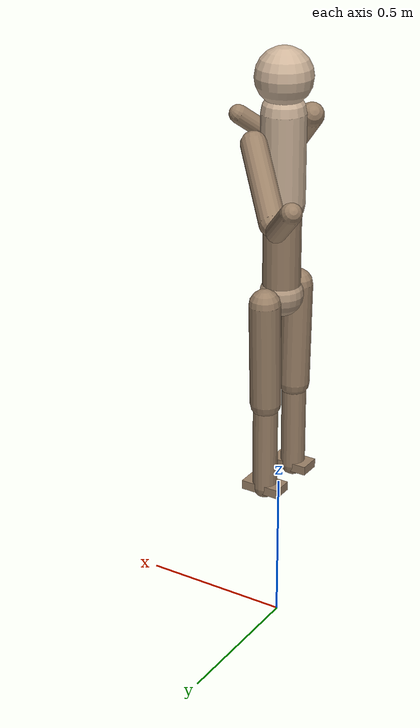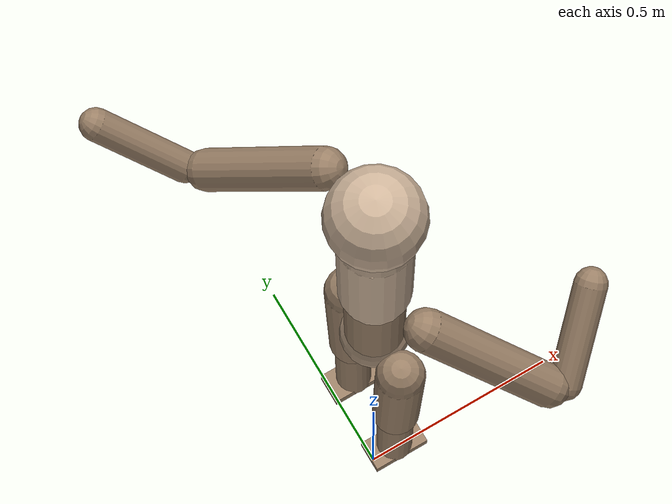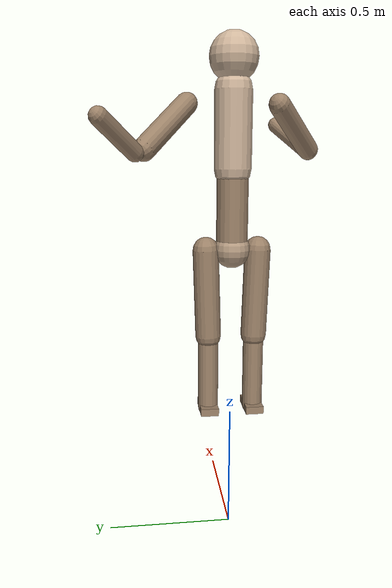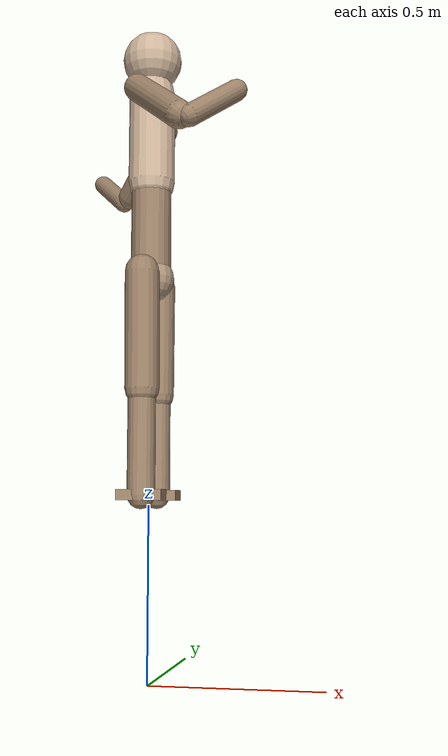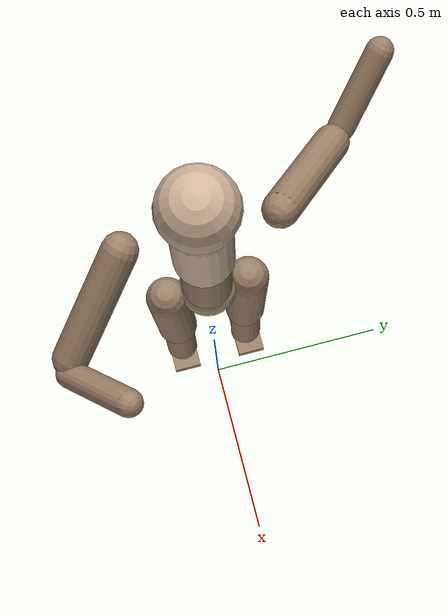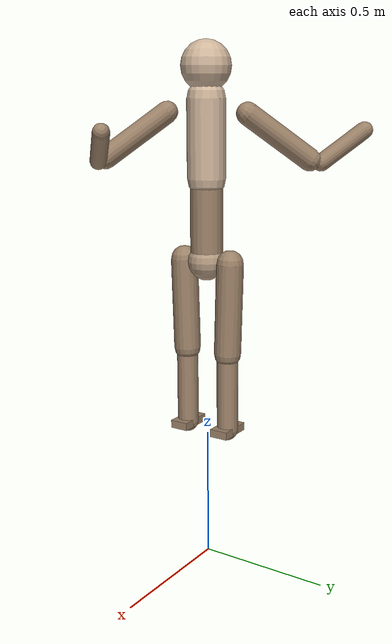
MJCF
<mujoco model="humanoid">
  <compiler angle="degree" eulerseq="xyz" meshdir="meshes"/>

  <default>
    <geom rgba="0.7 0.6 0.5 1" type="capsule"/>
    <joint damping="2" type="hinge"/>
    <default class="torso_class">
      <geom rgba="0.8 0.7 0.6 1" type="capsule"/>
    </default>
    <default class="limb_class">
      <geom rgba="0.6 0.5 0.4 1" type="capsule"/>
      <joint damping="1"/>
    </default>
  </default>

  <worldbody>
    <body name="torso" pos="0 0 1.4">
      <joint name="root" type="free"/>
      <geom type="capsule" fromto="0 0 0.07 0 0 0.35" size="0.07" class="torso_class"/>
      <geom type="sphere" pos="0 0 0.46" size="0.09" class="torso_class"/>

      <body name="head" pos="0 0 0.46">
        <geom type="sphere" size="0.09" rgba="0.8 0.7 0.6 1"/>
      </body>

      <body name="abdomen" pos="0 0 0.07">
        <joint name="abdomen_y" type="hinge" axis="0 1 0" range="-45 45" class="limb_class"/>
        <geom type="capsule" fromto="0 0 0 0 0 -0.3" size="0.06" class="limb_class"/>

        <body name="pelvis" pos="0 0 -0.3">
          <geom type="sphere" size="0.07" rgba="0.7 0.6 0.5 1"/>

          <!-- Right leg -->
          <body name="right_thigh" pos="0 -0.1 0">
            <joint name="right_hip_x" type="hinge" axis="1 0 0" range="-40 40" class="limb_class"/>
            <joint name="right_hip_y" type="hinge" axis="0 1 0" range="-120 20" class="limb_class"/>
            <geom type="capsule" fromto="0 0 0 0 0.01 -0.34" size="0.05" class="limb_class"/>

            <body name="right_shin" pos="0 0.01 -0.34">
              <joint name="right_knee" type="hinge" axis="0 -1 0" range="-160 2" class="limb_class"/>
              <geom type="capsule" fromto="0 0 0 0 0 -0.3" size="0.04" class="limb_class"/>

              <body name="right_foot" pos="0 0 -0.3">
                <geom type="box" size="0.065 0.035 0.015" rgba="0.6 0.5 0.4 1"/>
              </body>
            </body>
          </body>

          <!-- Left leg -->
          <body name="left_thigh" pos="0 0.1 0">
            <joint name="left_hip_x" type="hinge" axis="-1 0 0" range="-40 40" class="limb_class"/>
            <joint name="left_hip_y" type="hinge" axis="0 1 0" range="-120 20" class="limb_class"/>
            <geom type="capsule" fromto="0 0 0 0 -0.01 -0.34" size="0.05" class="limb_class"/>

            <body name="left_shin" pos="0 -0.01 -0.34">
              <joint name="left_knee" type="hinge" axis="0 -1 0" range="-160 2" class="limb_class"/>
              <geom type="capsule" fromto="0 0 0 0 0 -0.3" size="0.04" class="limb_class"/>

              <body name="left_foot" pos="0 0 -0.3">
                <geom type="box" size="0.065 0.035 0.015" rgba="0.6 0.5 0.4 1"/>
              </body>
            </body>
          </body>
        </body>
      </body>

      <!-- Right arm -->
      <body name="right_upper_arm" pos="0 -0.17 0.3">
        <joint name="right_shoulder1" type="hinge" axis="2 1 1" range="-85 60" class="limb_class"/>
        <joint name="right_shoulder2" type="hinge" axis="0 -1 1" range="-85 60" class="limb_class"/>
        <geom type="capsule" fromto="0 0 0 0.16 -0.16 -0.16" size="0.04" class="limb_class"/>

        <body name="right_lower_arm" pos="0.18 -0.18 -0.18">
          <joint name="right_elbow" type="hinge" axis="0 -1 1" range="-90 50" class="limb_class"/>
          <geom type="capsule" fromto="0.01 0.01 0.01 0.12 0.12 0.12" size="0.031" class="limb_class"/>
        </body>
      </body>

      <!-- Left arm -->
      <body name="left_upper_arm" pos="0 0.17 0.3">
        <joint name="left_shoulder1" type="hinge" axis="2 -1 1" range="-60 85" class="limb_class"/>
        <joint name="left_shoulder2" type="hinge" axis="0 1 1" range="-60 85" class="limb_class"/>
        <geom type="capsule" fromto="0 0 0 -0.16 0.16 -0.16" size="0.04" class="limb_class"/>

        <body name="left_lower_arm" pos="-0.18 0.18 -0.18">
          <joint name="left_elbow" type="hinge" axis="0 -1 -1" range="-90 50" class="limb_class"/>
          <geom type="capsule" fromto="-0.01 0.01 0.01 -0.12 0.12 0.12" size="0.031" class="limb_class"/>
        </body>
      </body>

    </body>
  </worldbody>
</mujoco>
